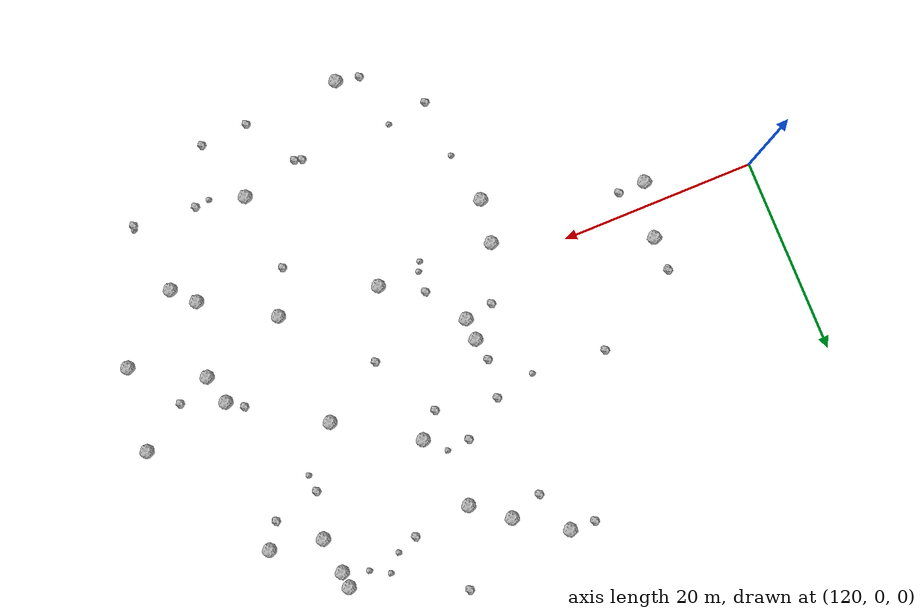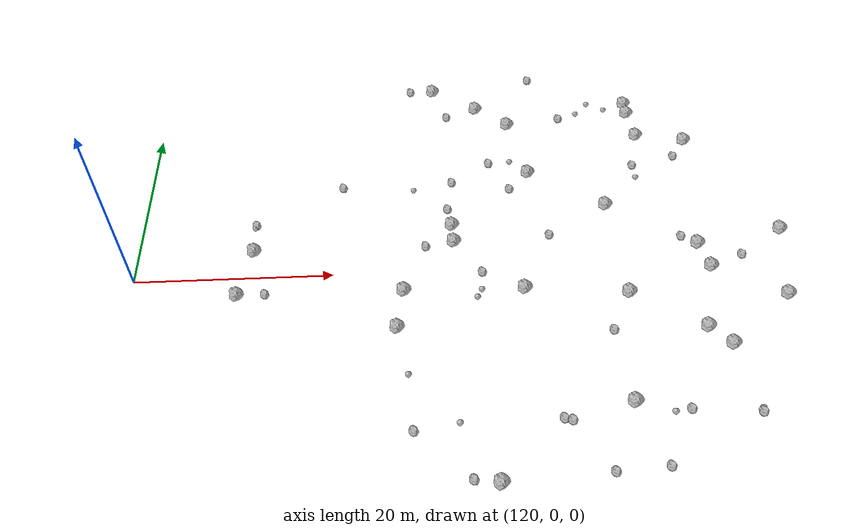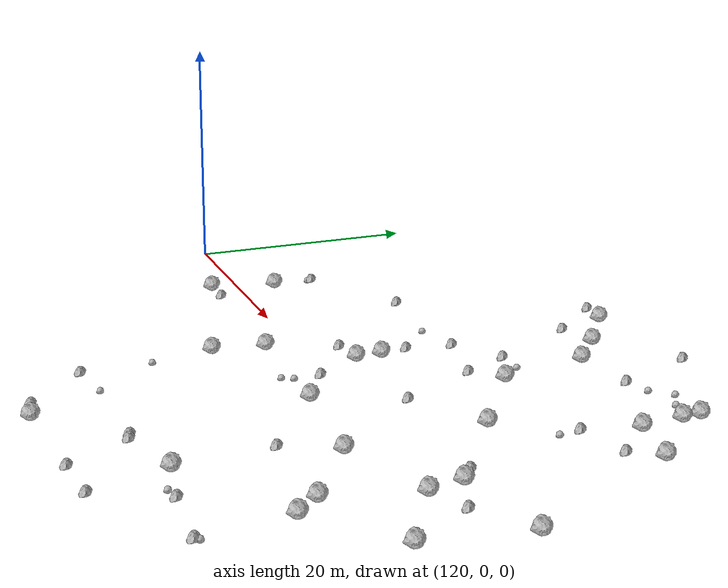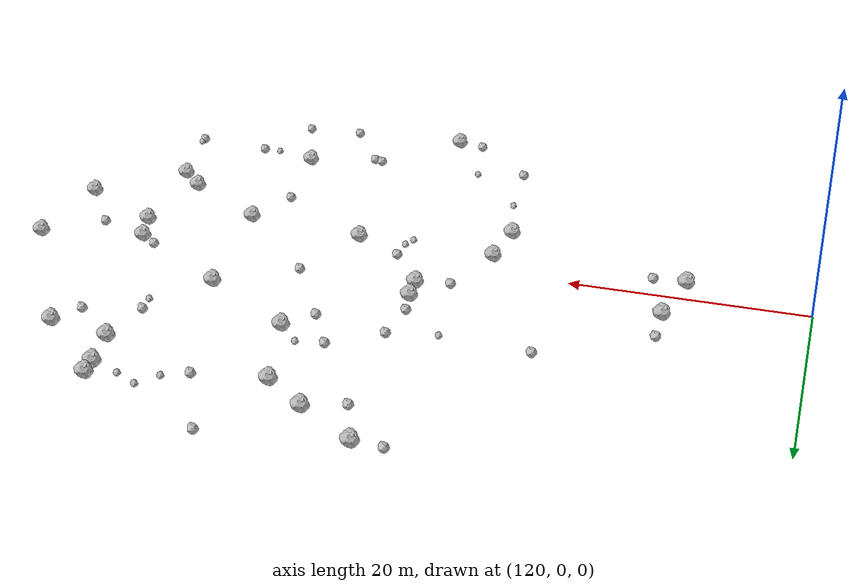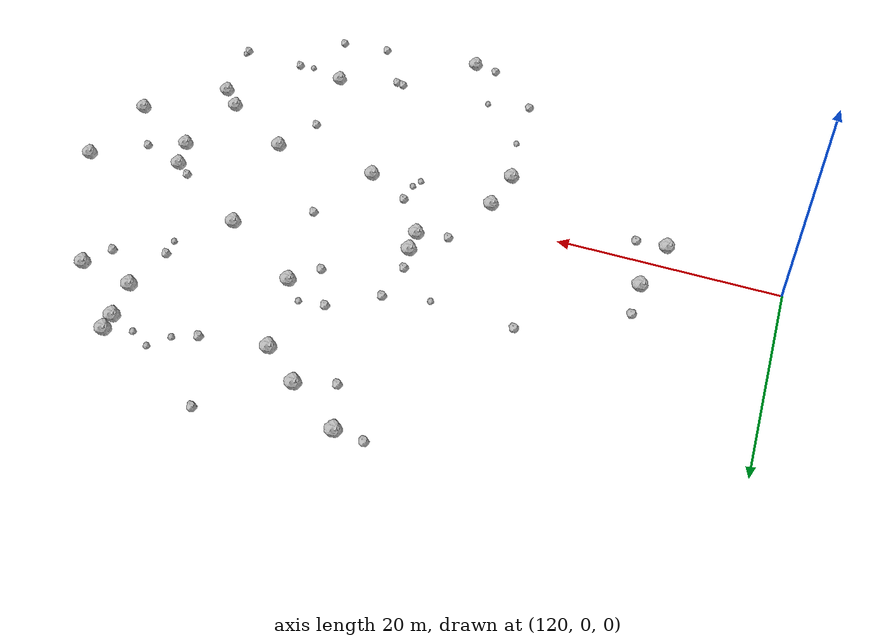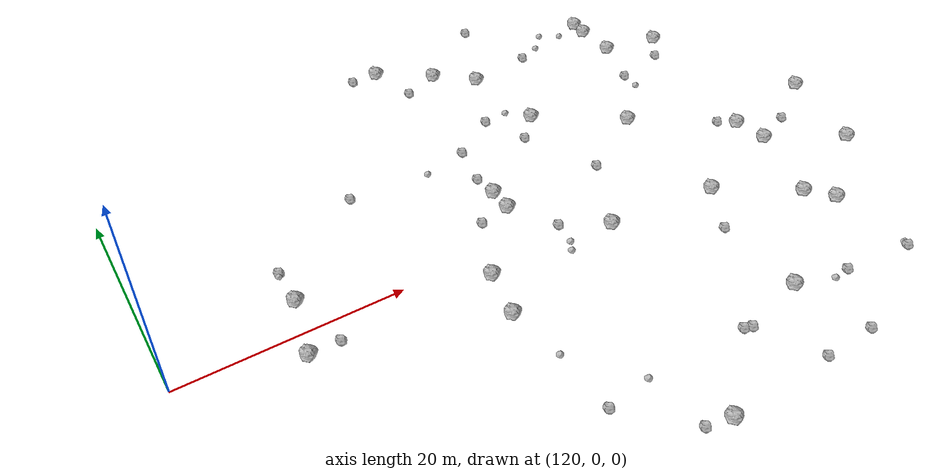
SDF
<sdf version="1.6">
 <world name="default">
  <include><uri>model://sun</uri></include>
  <model name="rock1_4_2">
   <include><uri>model://rock1</uri><pose>152.1884645664684 5.954055306885088 0.5 0 0 0</pose></include>
  </model>
  <model name="rock1_4_3">
   <include><uri>model://rock1</uri><pose>172.97773350308384 22.22649503897989 0.5 0 0 0</pose></include>
  </model>
  <model name="rock1_4_4">
   <include><uri>model://rock1</uri><pose>155.38054955474232 -23.6185326073959 0.5 0 0 0</pose></include>
  </model>
  <model name="rock1_4_5">
   <include><uri>model://rock1</uri><pose>168.64894218942067 8.122303560546477 0.5 0 0 0</pose></include>
  </model>
  <model name="rock1_4_6">
   <include><uri>model://rock1</uri><pose>168.1587840115917 -16.07176750604564 0.5 0 0 0</pose></include>
  </model>
  <model name="rock1_4_7">
   <include><uri>model://rock1</uri><pose>150.69076219743613 26.848458774539132 0.5 0 0 0</pose></include>
  </model>
  <model name="rock1_4_8">
   <include><uri>model://rock1</uri><pose>177.45857553676151 2.371713717193437 0.5 0 0 0</pose></include>
  </model>
  <model name="rock1_4_9">
   <include><uri>model://rock1</uri><pose>185.23222316435408 -4.4830483587517165 0.5 0 0 0</pose></include>
  </model>
  <model name="rock1_4_10">
   <include><uri>model://rock1</uri><pose>176.50612193948422 -8.047587136999347 0.5 0 0 0</pose></include>
  </model>
  <model name="rock1_4_11">
   <include><uri>model://rock1</uri><pose>159.16492608686022 -2.6505198050790675 0.5 0 0 0</pose></include>
  </model>
  <model name="rock1_4_12">
   <include><uri>model://rock1</uri><pose>155.5535802853821 23.64288896782456 0.5 0 0 0</pose></include>
  </model>
  <model name="rock1_4_13">
   <include><uri>model://rock1</uri><pose>147.0953029671909 -2.4401874263989782 0.5 0 0 0</pose></include>
  </model>
  <model name="rock1_4_14">
   <include><uri>model://rock1</uri><pose>169.49992034625092 -3.6025622594120925 0.5 0 0 0</pose></include>
  </model>
  <model name="rock1_4_15">
   <include><uri>model://rock1</uri><pose>146.4039239751047 -6.8838476678823355 0.5 0 0 0</pose></include>
  </model>
  <model name="rock1_4_16">
   <include><uri>model://rock1</uri><pose>172.89520160477812 23.817160764243994 0.5 0 0 0</pose></include>
  </model>
  <model name="rock1_4_17">
   <include><uri>model://rock1</uri><pose>131.7930418724886 3.2455193306946057 0.5 0 0 0</pose></include>
  </model>
  <model name="rock1_4_18">
   <include><uri>model://rock1</uri><pose>178.51153755498265 -10.143636341561272 0.5 0 0 0</pose></include>
  </model>
  <model name="rock1_4_19">
   <include><uri>model://rock1</uri><pose>173.4956189619664 18.515337999639293 0.5 0 0 0</pose></include>
  </model>
  <model name="rock1_4_20">
   <include><uri>model://rock1</uri><pose>159.04711098938344 20.879184162399312 0.5 0 0 0</pose></include>
  </model>
  <model name="rock1_4_21">
   <include><uri>model://rock1</uri><pose>130.5319164327278 -2.3401602847836678 0.5 0 0 0</pose></include>
  </model>
  <model name="rock1_4_22">
   <include><uri>model://rock1</uri><pose>186.43352787743035 3.957588945761131 0.5 0 0 0</pose></include>
  </model>
  <model name="rock1_4_23">
   <include><uri>model://rock1</uri><pose>178.78550783009015 17.514338969084015 0.5 0 0 0</pose></include>
  </model>
  <model name="rock1_4_24">
   <include><uri>model://rock1</uri><pose>178.27557758013907 -0.6461952361102483 0.5 0 0 0</pose></include>
  </model>
  <model name="rock1_4_25">
   <include><uri>model://rock1</uri><pose>152.30518339516556 3.703670648485641 0.5 0 0 0</pose></include>
  </model>
  <model name="rock1_4_26">
   <include><uri>model://rock1</uri><pose>160.7674901920502 13.208018236112096 0.5 0 0 0</pose></include>
  </model>
  <model name="rock2_4_0">
   <include><uri>model://rock2</uri><pose>179.59522024302746 -17.60139865387149 0.3 0 0 0</pose></include>
  </model>
  <model name="rock2_4_1">
   <include><uri>model://rock2</uri><pose>161.47918002486534 -17.487887022996453 0.3 0 0 0</pose></include>
  </model>
  <model name="rock2_4_2">
   <include><uri>model://rock2</uri><pose>152.16100510440327 22.520194015762357 0.3 0 0 0</pose></include>
  </model>
  <model name="rock2_4_3">
   <include><uri>model://rock2</uri><pose>172.3910335317057 13.92678503931802 0.3 0 0 0</pose></include>
  </model>
  <model name="rock2_4_4">
   <include><uri>model://rock2</uri><pose>148.08488668691587 26.998654411051625 0.3 0 0 0</pose></include>
  </model>
  <model name="rock2_4_5">
   <include><uri>model://rock2</uri><pose>165.00236419392778 21.753339492643626 0.3 0 0 0</pose></include>
  </model>
  <model name="rock2_4_6">
   <include><uri>model://rock2</uri><pose>152.37580656946517 12.138117136647459 0.3 0 0 0</pose></include>
  </model>
  <model name="rock2_4_7">
   <include><uri>model://rock2</uri><pose>173.15913714372493 -17.03436627861344 0.3 0 0 0</pose></include>
  </model>
  <model name="rock2_4_8">
   <include><uri>model://rock2</uri><pose>131.74189024798684 6.806562206567413 0.3 0 0 0</pose></include>
  </model>
  <model name="rock2_4_9">
   <include><uri>model://rock2</uri><pose>162.21446150948674 -17.710447147729283 0.3 0 0 0</pose></include>
  </model>
  <model name="rock2_4_10">
   <include><uri>model://rock2</uri><pose>158.57225541588056 10.945746271342124 0.3 0 0 0</pose></include>
  </model>
  <model name="rock2_4_11">
   <include><uri>model://rock2</uri><pose>170.28481186911029 -22.646294794700303 0.3 0 0 0</pose></include>
  </model>
  <model name="rock2_4_12">
   <include><uri>model://rock2</uri><pose>167.33035572703642 -8.022797759857411 0.3 0 0 0</pose></include>
  </model>
  <model name="rock2_4_13">
   <include><uri>model://rock2</uri><pose>177.150062048374 15.145448189425629 0.3 0 0 0</pose></include>
  </model>
  <model name="rock2_4_14">
   <include><uri>model://rock2</uri><pose>162.01340775309498 28.557732090383695 0.3 0 0 0</pose></include>
  </model>
  <model name="rock2_4_15">
   <include><uri>model://rock2</uri><pose>181.71382739297496 0.7910624361434628 0.3 0 0 0</pose></include>
  </model>
  <model name="rock2_4_16">
   <include><uri>model://rock2</uri><pose>147.82859059505853 -18.24135548775329 0.3 0 0 0</pose></include>
  </model>
  <model name="rock2_4_17">
   <include><uri>model://rock2</uri><pose>162.2489011131499 4.258374786849657 0.3 0 0 0</pose></include>
  </model>
  <model name="rock2_4_18">
   <include><uri>model://rock2</uri><pose>149.36566814195345 3.2275015956112725 0.3 0 0 0</pose></include>
  </model>
  <model name="rock2_4_19">
   <include><uri>model://rock2</uri><pose>133.2745984230813 -2.276462206432363 0.3 0 0 0</pose></include>
  </model>
  <model name="rock2_4_20">
   <include><uri>model://rock2</uri><pose>152.99659061894047 -23.18378860204691 0.3 0 0 0</pose></include>
  </model>
  <model name="rock2_4_21">
   <include><uri>model://rock2</uri><pose>155.01621309916476 -0.3624994227074687 0.3 0 0 0</pose></include>
  </model>
  <model name="rock2_4_22">
   <include><uri>model://rock2</uri><pose>151.7951004504843 8.262033135675686 0.3 0 0 0</pose></include>
  </model>
  <model name="rock2_4_23">
   <include><uri>model://rock2</uri><pose>175.91154135250358 3.4746054077939448 0.3 0 0 0</pose></include>
  </model>
  <model name="rock2_4_24">
   <include><uri>model://rock2</uri><pose>165.3695736163619 -22.96072301741772 0.3 0 0 0</pose></include>
  </model>
  <model name="rock2_4_25">
   <include><uri>model://rock2</uri><pose>156.5386002380433 14.880769010181218 0.3 0 0 0</pose></include>
  </model>
  <model name="rock2_4_26">
   <include><uri>model://rock2</uri><pose>140.65201542935787 11.81199254333989 0.3 0 0 0</pose></include>
  </model>
  <model name="rock3_4_0">
   <include><uri>model://rock3</uri><pose>147.41700151888944 -12.227740789883441 0.2 0 0 0</pose></include>
  </model>
  <model name="rock3_4_1">
   <include><uri>model://rock3</uri><pose>148.22504024928648 11.181638756197273 0.2 0 0 0</pose></include>
  </model>
  <model name="rock3_4_2">
   <include><uri>model://rock3</uri><pose>172.52040065739652 12.15233771699885 0.2 0 0 0</pose></include>
  </model>
  <model name="rock3_4_3">
   <include><uri>model://rock3</uri><pose>158.88862745345915 15.065486766732363 0.2 0 0 0</pose></include>
  </model>
  <model name="rock3_4_4">
   <include><uri>model://rock3</uri><pose>168.5627905983069 24.089330715107252 0.2 0 0 0</pose></include>
  </model>
  <model name="rock3_4_5">
   <include><uri>model://rock3</uri><pose>179.68759986498125 -17.20562023185859 0.2 0 0 0</pose></include>
  </model>
  <model name="rock3_4_6">
   <include><uri>model://rock3</uri><pose>131.61921669788785 6.479959916132771 0.2 0 0 0</pose></include>
  </model>
  <model name="rock3_4_7">
   <include><uri>model://rock3</uri><pose>152.02856391373302 -17.560401506651058 0.2 0 0 0</pose></include>
  </model>
  <model name="rock3_4_8">
   <include><uri>model://rock3</uri><pose>170.43650781364352 23.075864849359938 0.2 0 0 0</pose></include>
  </model>
  <model name="rock3_4_9">
   <include><uri>model://rock3</uri><pose>154.86129020234583 -2.5416601120676354 0.2 0 0 0</pose></include>
  </model>
  <model name="rock3_4_10">
   <include><uri>model://rock3</uri><pose>167.1079209300038 22.51684492165252 0.2 0 0 0</pose></include>
  </model>
  <model name="rock3_4_11">
   <include><uri>model://rock3</uri><pose>154.37828643406408 -3.466237683647396 0.2 0 0 0</pose></include>
  </model>
  <model name="rock3_4_12">
   <include><uri>model://rock3</uri><pose>171.63951979271957 -17.246707700914392 0.2 0 0 0</pose></include>
  </model>
 </world>
</sdf>
